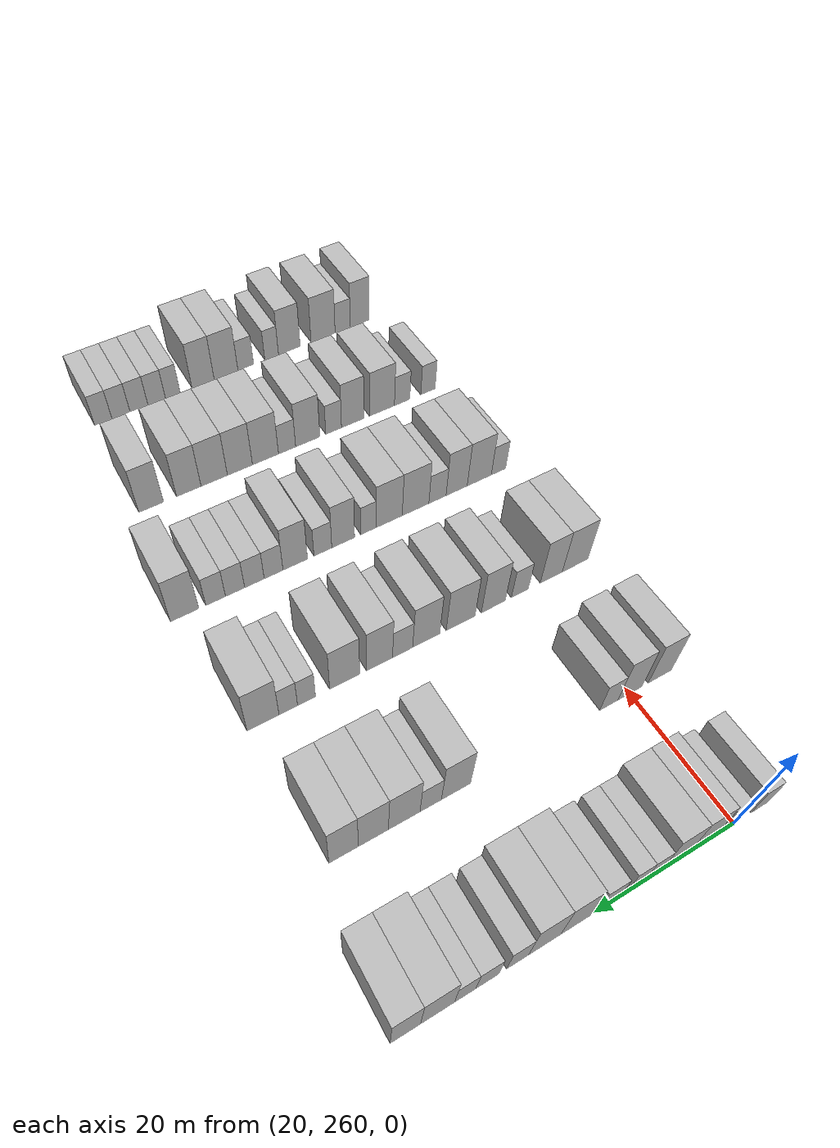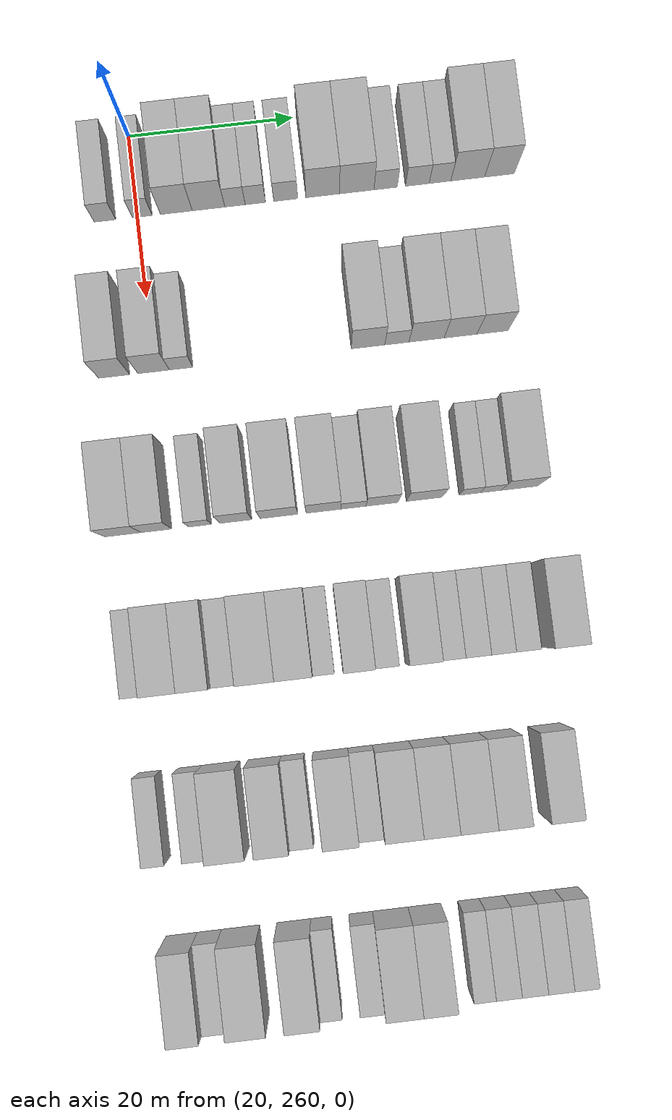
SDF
<sdf version="1.6">
 <world name="default">
  <model name="building_148">
   <static>1</static>
   <pose>25.0000 256.0724 0 0.000000 0.000000 0.000000</pose>
   <link name="link">
    <pose>0 0 3.00 0 0 0</pose>
    <collision name="collision"><geometry><box><size>10.0000 2.6097 6.0000</size></box></geometry></collision>
    <visual name="visual">
     <cast_shadows>0</cast_shadows>
     <geometry><box><size>10.0000 2.6097 6.0000</size></box></geometry>
     <material>
      <script>
       <uri>model://HANNAS_wall/materials/scripts</uri>
       <uri>model://HANNAS_wall/materials/textures</uri>
       <name>vrc/HANNAS_wall</name>
      </script>
     </material>
    </visual>
   </link>
  </model>
  <model name="building_149">
   <static>1</static>
   <pose>25.0000 260.5832 0 0.000000 0.000000 0.000000</pose>
   <link name="link">
    <pose>0 0 3.00 0 0 0</pose>
    <collision name="collision"><geometry><box><size>10.0000 2.4118 6.0000</size></box></geometry></collision>
    <visual name="visual">
     <cast_shadows>0</cast_shadows>
     <geometry><box><size>10.0000 2.4118 6.0000</size></box></geometry>
     <material>
      <script>
       <uri>model://HANNAS_wall/materials/scripts</uri>
       <uri>model://HANNAS_wall/materials/textures</uri>
       <name>vrc/HANNAS_wall</name>
      </script>
     </material>
    </visual>
   </link>
  </model>
  <model name="building_150">
   <static>1</static>
   <pose>25.0000 264.7228 0 0.000000 0.000000 0.000000</pose>
   <link name="link">
    <pose>0 0 4.50 0 0 0</pose>
    <collision name="collision"><geometry><box><size>10.0000 3.8675 9.0000</size></box></geometry></collision>
    <visual name="visual">
     <cast_shadows>0</cast_shadows>
     <geometry><box><size>10.0000 3.8675 9.0000</size></box></geometry>
     <material>
      <script>
       <uri>model://HANNAS_wall/materials/scripts</uri>
       <uri>model://HANNAS_wall/materials/textures</uri>
       <name>vrc/HANNAS_wall</name>
      </script>
     </material>
    </visual>
   </link>
  </model>
  <model name="building_151">
   <static>1</static>
   <pose>25.0000 268.6238 0 0.000000 0.000000 0.000000</pose>
   <link name="link">
    <pose>0 0 4.50 0 0 0</pose>
    <collision name="collision"><geometry><box><size>10.0000 3.9345 9.0000</size></box></geometry></collision>
    <visual name="visual">
     <cast_shadows>0</cast_shadows>
     <geometry><box><size>10.0000 3.9345 9.0000</size></box></geometry>
     <material>
      <script>
       <uri>model://HANNAS_wall/materials/scripts</uri>
       <uri>model://HANNAS_wall/materials/textures</uri>
       <name>vrc/HANNAS_wall</name>
      </script>
     </material>
    </visual>
   </link>
  </model>
  <model name="building_152">
   <static>1</static>
   <pose>25.0000 271.8308 0 0.000000 0.000000 0.000000</pose>
   <link name="link">
    <pose>0 0 3.00 0 0 0</pose>
    <collision name="collision"><geometry><box><size>10.0000 2.4795 6.0000</size></box></geometry></collision>
    <visual name="visual">
     <cast_shadows>0</cast_shadows>
     <geometry><box><size>10.0000 2.4795 6.0000</size></box></geometry>
     <material>
      <script>
       <uri>model://HANNAS_wall/materials/scripts</uri>
       <uri>model://HANNAS_wall/materials/textures</uri>
       <name>vrc/HANNAS_wall</name>
      </script>
     </material>
    </visual>
   </link>
  </model>
  <model name="building_153">
   <static>1</static>
   <pose>25.0000 274.3055 0 0.000000 0.000000 0.000000</pose>
   <link name="link">
    <pose>0 0 3.00 0 0 0</pose>
    <collision name="collision"><geometry><box><size>10.0000 2.4700 6.0000</size></box></geometry></collision>
    <visual name="visual">
     <cast_shadows>0</cast_shadows>
     <geometry><box><size>10.0000 2.4700 6.0000</size></box></geometry>
     <material>
      <script>
       <uri>model://HANNAS_wall/materials/scripts</uri>
       <uri>model://HANNAS_wall/materials/textures</uri>
       <name>vrc/HANNAS_wall</name>
      </script>
     </material>
    </visual>
   </link>
  </model>
  <model name="building_154">
   <static>1</static>
   <pose>25.0000 277.9898 0 0.000000 0.000000 0.000000</pose>
   <link name="link">
    <pose>0 0 3.00 0 0 0</pose>
    <collision name="collision"><geometry><box><size>10.0000 2.8985 6.0000</size></box></geometry></collision>
    <visual name="visual">
     <cast_shadows>0</cast_shadows>
     <geometry><box><size>10.0000 2.8985 6.0000</size></box></geometry>
     <material>
      <script>
       <uri>model://HANNAS_wall/materials/scripts</uri>
       <uri>model://HANNAS_wall/materials/textures</uri>
       <name>vrc/HANNAS_wall</name>
      </script>
     </material>
    </visual>
   </link>
  </model>
  <model name="building_155">
   <static>1</static>
   <pose>25.0000 282.4814 0 0.000000 0.000000 0.000000</pose>
   <link name="link">
    <pose>0 0 4.50 0 0 0</pose>
    <collision name="collision"><geometry><box><size>10.0000 4.0847 9.0000</size></box></geometry></collision>
    <visual name="visual">
     <cast_shadows>0</cast_shadows>
     <geometry><box><size>10.0000 4.0847 9.0000</size></box></geometry>
     <material>
      <script>
       <uri>model://HANNAS_wall/materials/scripts</uri>
       <uri>model://HANNAS_wall/materials/textures</uri>
       <name>vrc/HANNAS_wall</name>
      </script>
     </material>
    </visual>
   </link>
  </model>
  <model name="building_156">
   <static>1</static>
   <pose>25.0000 286.6194 0 0.000000 0.000000 0.000000</pose>
   <link name="link">
    <pose>0 0 4.50 0 0 0</pose>
    <collision name="collision"><geometry><box><size>10.0000 4.1914 9.0000</size></box></geometry></collision>
    <visual name="visual">
     <cast_shadows>0</cast_shadows>
     <geometry><box><size>10.0000 4.1914 9.0000</size></box></geometry>
     <material>
      <script>
       <uri>model://HANNAS_wall/materials/scripts</uri>
       <uri>model://HANNAS_wall/materials/textures</uri>
       <name>vrc/HANNAS_wall</name>
      </script>
     </material>
    </visual>
   </link>
  </model>
  <model name="building_157">
   <static>1</static>
   <pose>25.0000 290.1239 0 0.000000 0.000000 0.000000</pose>
   <link name="link">
    <pose>0 0 3.00 0 0 0</pose>
    <collision name="collision"><geometry><box><size>10.0000 2.8177 6.0000</size></box></geometry></collision>
    <visual name="visual">
     <cast_shadows>0</cast_shadows>
     <geometry><box><size>10.0000 2.8177 6.0000</size></box></geometry>
     <material>
      <script>
       <uri>model://HANNAS_wall/materials/scripts</uri>
       <uri>model://HANNAS_wall/materials/textures</uri>
       <name>vrc/HANNAS_wall</name>
      </script>
     </material>
    </visual>
   </link>
  </model>
  <model name="building_158">
   <static>1</static>
   <pose>25.0000 293.9737 0 0.000000 0.000000 0.000000</pose>
   <link name="link">
    <pose>0 0 3.00 0 0 0</pose>
    <collision name="collision"><geometry><box><size>10.0000 2.8818 6.0000</size></box></geometry></collision>
    <visual name="visual">
     <cast_shadows>0</cast_shadows>
     <geometry><box><size>10.0000 2.8818 6.0000</size></box></geometry>
     <material>
      <script>
       <uri>model://HANNAS_wall/materials/scripts</uri>
       <uri>model://HANNAS_wall/materials/textures</uri>
       <name>vrc/HANNAS_wall</name>
      </script>
     </material>
    </visual>
   </link>
  </model>
  <model name="building_159">
   <static>1</static>
   <pose>25.0000 296.7320 0 0.000000 0.000000 0.000000</pose>
   <link name="link">
    <pose>0 0 3.00 0 0 0</pose>
    <collision name="collision"><geometry><box><size>10.0000 2.6347 6.0000</size></box></geometry></collision>
    <visual name="visual">
     <cast_shadows>0</cast_shadows>
     <geometry><box><size>10.0000 2.6347 6.0000</size></box></geometry>
     <material>
      <script>
       <uri>model://HANNAS_wall/materials/scripts</uri>
       <uri>model://HANNAS_wall/materials/textures</uri>
       <name>vrc/HANNAS_wall</name>
      </script>
     </material>
    </visual>
   </link>
  </model>
  <model name="building_160">
   <static>1</static>
   <pose>25.0000 300.1046 0 0.000000 0.000000 0.000000</pose>
   <link name="link">
    <pose>0 0 4.50 0 0 0</pose>
    <collision name="collision"><geometry><box><size>10.0000 4.1106 9.0000</size></box></geometry></collision>
    <visual name="visual">
     <cast_shadows>0</cast_shadows>
     <geometry><box><size>10.0000 4.1106 9.0000</size></box></geometry>
     <material>
      <script>
       <uri>model://HANNAS_wall/materials/scripts</uri>
       <uri>model://HANNAS_wall/materials/textures</uri>
       <name>vrc/HANNAS_wall</name>
      </script>
     </material>
    </visual>
   </link>
  </model>
  <model name="building_161">
   <static>1</static>
   <pose>25.0000 303.9620 0 0.000000 0.000000 0.000000</pose>
   <link name="link">
    <pose>0 0 4.50 0 0 0</pose>
    <collision name="collision"><geometry><box><size>10.0000 3.6041 9.0000</size></box></geometry></collision>
    <visual name="visual">
     <cast_shadows>0</cast_shadows>
     <geometry><box><size>10.0000 3.6041 9.0000</size></box></geometry>
     <material>
      <script>
       <uri>model://HANNAS_wall/materials/scripts</uri>
       <uri>model://HANNAS_wall/materials/textures</uri>
       <name>vrc/HANNAS_wall</name>
      </script>
     </material>
    </visual>
   </link>
  </model>
  <model name="building_323">
   <static>1</static>
   <pose>44.0000 255.1753 0 0.000000 0.000000 0.000000</pose>
   <link name="link">
    <pose>0 0 4.50 0 0 0</pose>
    <collision name="collision"><geometry><box><size>10.0000 3.7163 9.0000</size></box></geometry></collision>
    <visual name="visual">
     <cast_shadows>0</cast_shadows>
     <geometry><box><size>10.0000 3.7163 9.0000</size></box></geometry>
     <material>
      <script>
       <uri>model://HANNAS_wall/materials/scripts</uri>
       <uri>model://HANNAS_wall/materials/textures</uri>
       <name>vrc/HANNAS_wall</name>
      </script>
     </material>
    </visual>
   </link>
  </model>
  <model name="building_324">
   <static>1</static>
   <pose>44.0000 259.9246 0 0.000000 0.000000 0.000000</pose>
   <link name="link">
    <pose>0 0 4.50 0 0 0</pose>
    <collision name="collision"><geometry><box><size>10.0000 3.7822 9.0000</size></box></geometry></collision>
    <visual name="visual">
     <cast_shadows>0</cast_shadows>
     <geometry><box><size>10.0000 3.7822 9.0000</size></box></geometry>
     <material>
      <script>
       <uri>model://HANNAS_wall/materials/scripts</uri>
       <uri>model://HANNAS_wall/materials/textures</uri>
       <name>vrc/HANNAS_wall</name>
      </script>
     </material>
    </visual>
   </link>
  </model>
  <model name="building_325">
   <static>1</static>
   <pose>44.0000 263.2282 0 0.000000 0.000000 0.000000</pose>
   <link name="link">
    <pose>0 0 3.00 0 0 0</pose>
    <collision name="collision"><geometry><box><size>10.0000 2.8252 6.0000</size></box></geometry></collision>
    <visual name="visual">
     <cast_shadows>0</cast_shadows>
     <geometry><box><size>10.0000 2.8252 6.0000</size></box></geometry>
     <material>
      <script>
       <uri>model://HANNAS_wall/materials/scripts</uri>
       <uri>model://HANNAS_wall/materials/textures</uri>
       <name>vrc/HANNAS_wall</name>
      </script>
     </material>
    </visual>
   </link>
  </model>
  <model name="building_326">
   <static>1</static>
   <pose>44.0000 285.7005 0 0.000000 0.000000 0.000000</pose>
   <link name="link">
    <pose>0 0 4.50 0 0 0</pose>
    <collision name="collision"><geometry><box><size>10.0000 4.0398 9.0000</size></box></geometry></collision>
    <visual name="visual">
     <cast_shadows>0</cast_shadows>
     <geometry><box><size>10.0000 4.0398 9.0000</size></box></geometry>
     <material>
      <script>
       <uri>model://HANNAS_wall/materials/scripts</uri>
       <uri>model://HANNAS_wall/materials/textures</uri>
       <name>vrc/HANNAS_wall</name>
      </script>
     </material>
    </visual>
   </link>
  </model>
  <model name="building_327">
   <static>1</static>
   <pose>44.0000 289.1769 0 0.000000 0.000000 0.000000</pose>
   <link name="link">
    <pose>0 0 3.00 0 0 0</pose>
    <collision name="collision"><geometry><box><size>10.0000 2.9129 6.0000</size></box></geometry></collision>
    <visual name="visual">
     <cast_shadows>0</cast_shadows>
     <geometry><box><size>10.0000 2.9129 6.0000</size></box></geometry>
     <material>
      <script>
       <uri>model://HANNAS_wall/materials/scripts</uri>
       <uri>model://HANNAS_wall/materials/textures</uri>
       <name>vrc/HANNAS_wall</name>
      </script>
     </material>
    </visual>
   </link>
  </model>
  <model name="building_328">
   <static>1</static>
   <pose>44.0000 292.7556 0 0.000000 0.000000 0.000000</pose>
   <link name="link">
    <pose>0 0 4.50 0 0 0</pose>
    <collision name="collision"><geometry><box><size>10.0000 4.2446 9.0000</size></box></geometry></collision>
    <visual name="visual">
     <cast_shadows>0</cast_shadows>
     <geometry><box><size>10.0000 4.2446 9.0000</size></box></geometry>
     <material>
      <script>
       <uri>model://HANNAS_wall/materials/scripts</uri>
       <uri>model://HANNAS_wall/materials/textures</uri>
       <name>vrc/HANNAS_wall</name>
      </script>
     </material>
    </visual>
   </link>
  </model>
  <model name="building_329">
   <static>1</static>
   <pose>44.0000 296.8523 0 0.000000 0.000000 0.000000</pose>
   <link name="link">
    <pose>0 0 4.50 0 0 0</pose>
    <collision name="collision"><geometry><box><size>10.0000 3.9488 9.0000</size></box></geometry></collision>
    <visual name="visual">
     <cast_shadows>0</cast_shadows>
     <geometry><box><size>10.0000 3.9488 9.0000</size></box></geometry>
     <material>
      <script>
       <uri>model://HANNAS_wall/materials/scripts</uri>
       <uri>model://HANNAS_wall/materials/textures</uri>
       <name>vrc/HANNAS_wall</name>
      </script>
     </material>
    </visual>
   </link>
  </model>
  <model name="building_330">
   <static>1</static>
   <pose>44.0000 300.7089 0 0.000000 0.000000 0.000000</pose>
   <link name="link">
    <pose>0 0 4.50 0 0 0</pose>
    <collision name="collision"><geometry><box><size>10.0000 3.7645 9.0000</size></box></geometry></collision>
    <visual name="visual">
     <cast_shadows>0</cast_shadows>
     <geometry><box><size>10.0000 3.7645 9.0000</size></box></geometry>
     <material>
      <script>
       <uri>model://HANNAS_wall/materials/scripts</uri>
       <uri>model://HANNAS_wall/materials/textures</uri>
       <name>vrc/HANNAS_wall</name>
      </script>
     </material>
    </visual>
   </link>
  </model>
  <model name="building_487">
   <static>1</static>
   <pose>63.0000 254.2219 0 0.000000 0.000000 0.000000</pose>
   <link name="link">
    <pose>0 0 4.50 0 0 0</pose>
    <collision name="collision"><geometry><box><size>10.0000 4.3231 9.0000</size></box></geometry></collision>
    <visual name="visual">
     <cast_shadows>0</cast_shadows>
     <geometry><box><size>10.0000 4.3231 9.0000</size></box></geometry>
     <material>
      <script>
       <uri>model://HANNAS_wall/materials/scripts</uri>
       <uri>model://HANNAS_wall/materials/textures</uri>
       <name>vrc/HANNAS_wall</name>
      </script>
     </material>
    </visual>
   </link>
  </model>
  <model name="building_488">
   <static>1</static>
   <pose>63.0000 258.2135 0 0.000000 0.000000 0.000000</pose>
   <link name="link">
    <pose>0 0 4.50 0 0 0</pose>
    <collision name="collision"><geometry><box><size>10.0000 3.6602 9.0000</size></box></geometry></collision>
    <visual name="visual">
     <cast_shadows>0</cast_shadows>
     <geometry><box><size>10.0000 3.6602 9.0000</size></box></geometry>
     <material>
      <script>
       <uri>model://HANNAS_wall/materials/scripts</uri>
       <uri>model://HANNAS_wall/materials/textures</uri>
       <name>vrc/HANNAS_wall</name>
      </script>
     </material>
    </visual>
   </link>
  </model>
  <model name="building_489">
   <static>1</static>
   <pose>63.0000 263.4061 0 0.000000 0.000000 0.000000</pose>
   <link name="link">
    <pose>0 0 3.00 0 0 0</pose>
    <collision name="collision"><geometry><box><size>10.0000 2.7249 6.0000</size></box></geometry></collision>
    <visual name="visual">
     <cast_shadows>0</cast_shadows>
     <geometry><box><size>10.0000 2.7249 6.0000</size></box></geometry>
     <material>
      <script>
       <uri>model://HANNAS_wall/materials/scripts</uri>
       <uri>model://HANNAS_wall/materials/textures</uri>
       <name>vrc/HANNAS_wall</name>
      </script>
     </material>
    </visual>
   </link>
  </model>
  <model name="building_490">
   <static>1</static>
   <pose>63.0000 267.6697 0 0.000000 0.000000 0.000000</pose>
   <link name="link">
    <pose>0 0 4.50 0 0 0</pose>
    <collision name="collision"><geometry><box><size>10.0000 3.8024 9.0000</size></box></geometry></collision>
    <visual name="visual">
     <cast_shadows>0</cast_shadows>
     <geometry><box><size>10.0000 3.8024 9.0000</size></box></geometry>
     <material>
      <script>
       <uri>model://HANNAS_wall/materials/scripts</uri>
       <uri>model://HANNAS_wall/materials/textures</uri>
       <name>vrc/HANNAS_wall</name>
      </script>
     </material>
    </visual>
   </link>
  </model>
  <model name="building_491">
   <static>1</static>
   <pose>63.0000 272.8130 0 0.000000 0.000000 0.000000</pose>
   <link name="link">
    <pose>0 0 4.50 0 0 0</pose>
    <collision name="collision"><geometry><box><size>10.0000 4.4840 9.0000</size></box></geometry></collision>
    <visual name="visual">
     <cast_shadows>0</cast_shadows>
     <geometry><box><size>10.0000 4.4840 9.0000</size></box></geometry>
     <material>
      <script>
       <uri>model://HANNAS_wall/materials/scripts</uri>
       <uri>model://HANNAS_wall/materials/textures</uri>
       <name>vrc/HANNAS_wall</name>
      </script>
     </material>
    </visual>
   </link>
  </model>
  <model name="building_492">
   <static>1</static>
   <pose>63.0000 278.1121 0 0.000000 0.000000 0.000000</pose>
   <link name="link">
    <pose>0 0 4.50 0 0 0</pose>
    <collision name="collision"><geometry><box><size>10.0000 4.1141 9.0000</size></box></geometry></collision>
    <visual name="visual">
     <cast_shadows>0</cast_shadows>
     <geometry><box><size>10.0000 4.1141 9.0000</size></box></geometry>
     <material>
      <script>
       <uri>model://HANNAS_wall/materials/scripts</uri>
       <uri>model://HANNAS_wall/materials/textures</uri>
       <name>vrc/HANNAS_wall</name>
      </script>
     </material>
    </visual>
   </link>
  </model>
  <model name="building_493">
   <static>1</static>
   <pose>63.0000 281.6688 0 0.000000 0.000000 0.000000</pose>
   <link name="link">
    <pose>0 0 3.00 0 0 0</pose>
    <collision name="collision"><geometry><box><size>10.0000 2.9994 6.0000</size></box></geometry></collision>
    <visual name="visual">
     <cast_shadows>0</cast_shadows>
     <geometry><box><size>10.0000 2.9994 6.0000</size></box></geometry>
     <material>
      <script>
       <uri>model://HANNAS_wall/materials/scripts</uri>
       <uri>model://HANNAS_wall/materials/textures</uri>
       <name>vrc/HANNAS_wall</name>
      </script>
     </material>
    </visual>
   </link>
  </model>
  <model name="building_494">
   <static>1</static>
   <pose>63.0000 285.0829 0 0.000000 0.000000 0.000000</pose>
   <link name="link">
    <pose>0 0 4.50 0 0 0</pose>
    <collision name="collision"><geometry><box><size>10.0000 3.8289 9.0000</size></box></geometry></collision>
    <visual name="visual">
     <cast_shadows>0</cast_shadows>
     <geometry><box><size>10.0000 3.8289 9.0000</size></box></geometry>
     <material>
      <script>
       <uri>model://HANNAS_wall/materials/scripts</uri>
       <uri>model://HANNAS_wall/materials/textures</uri>
       <name>vrc/HANNAS_wall</name>
      </script>
     </material>
    </visual>
   </link>
  </model>
  <model name="building_495">
   <static>1</static>
   <pose>63.0000 290.1448 0 0.000000 0.000000 0.000000</pose>
   <link name="link">
    <pose>0 0 4.50 0 0 0</pose>
    <collision name="collision"><geometry><box><size>10.0000 4.2949 9.0000</size></box></geometry></collision>
    <visual name="visual">
     <cast_shadows>0</cast_shadows>
     <geometry><box><size>10.0000 4.2949 9.0000</size></box></geometry>
     <material>
      <script>
       <uri>model://HANNAS_wall/materials/scripts</uri>
       <uri>model://HANNAS_wall/materials/textures</uri>
       <name>vrc/HANNAS_wall</name>
      </script>
     </material>
    </visual>
   </link>
  </model>
  <model name="building_496">
   <static>1</static>
   <pose>63.0000 295.5424 0 0.000000 0.000000 0.000000</pose>
   <link name="link">
    <pose>0 0 3.00 0 0 0</pose>
    <collision name="collision"><geometry><box><size>10.0000 2.5002 6.0000</size></box></geometry></collision>
    <visual name="visual">
     <cast_shadows>0</cast_shadows>
     <geometry><box><size>10.0000 2.5002 6.0000</size></box></geometry>
     <material>
      <script>
       <uri>model://HANNAS_wall/materials/scripts</uri>
       <uri>model://HANNAS_wall/materials/textures</uri>
       <name>vrc/HANNAS_wall</name>
      </script>
     </material>
    </visual>
   </link>
  </model>
  <model name="building_497">
   <static>1</static>
   <pose>63.0000 298.0688 0 0.000000 0.000000 0.000000</pose>
   <link name="link">
    <pose>0 0 3.00 0 0 0</pose>
    <collision name="collision"><geometry><box><size>10.0000 2.5527 6.0000</size></box></geometry></collision>
    <visual name="visual">
     <cast_shadows>0</cast_shadows>
     <geometry><box><size>10.0000 2.5527 6.0000</size></box></geometry>
     <material>
      <script>
       <uri>model://HANNAS_wall/materials/scripts</uri>
       <uri>model://HANNAS_wall/materials/textures</uri>
       <name>vrc/HANNAS_wall</name>
      </script>
     </material>
    </visual>
   </link>
  </model>
  <model name="building_498">
   <static>1</static>
   <pose>63.0000 301.5278 0 0.000000 0.000000 0.000000</pose>
   <link name="link">
    <pose>0 0 4.50 0 0 0</pose>
    <collision name="collision"><geometry><box><size>10.0000 4.3652 9.0000</size></box></geometry></collision>
    <visual name="visual">
     <cast_shadows>0</cast_shadows>
     <geometry><box><size>10.0000 4.3652 9.0000</size></box></geometry>
     <material>
      <script>
       <uri>model://HANNAS_wall/materials/scripts</uri>
       <uri>model://HANNAS_wall/materials/textures</uri>
       <name>vrc/HANNAS_wall</name>
      </script>
     </material>
    </visual>
   </link>
  </model>
  <model name="building_654">
   <static>1</static>
   <pose>82.0000 253.9938 0 0.000000 0.000000 0.000000</pose>
   <link name="link">
    <pose>0 0 3.00 0 0 0</pose>
    <collision name="collision"><geometry><box><size>10.0000 2.5223 6.0000</size></box></geometry></collision>
    <visual name="visual">
     <cast_shadows>0</cast_shadows>
     <geometry><box><size>10.0000 2.5223 6.0000</size></box></geometry>
     <material>
      <script>
       <uri>model://HANNAS_wall/materials/scripts</uri>
       <uri>model://HANNAS_wall/materials/textures</uri>
       <name>vrc/HANNAS_wall</name>
      </script>
     </material>
    </visual>
   </link>
  </model>
  <model name="building_655">
   <static>1</static>
   <pose>82.0000 257.3512 0 0.000000 0.000000 0.000000</pose>
   <link name="link">
    <pose>0 0 4.50 0 0 0</pose>
    <collision name="collision"><geometry><box><size>10.0000 4.1924 9.0000</size></box></geometry></collision>
    <visual name="visual">
     <cast_shadows>0</cast_shadows>
     <geometry><box><size>10.0000 4.1924 9.0000</size></box></geometry>
     <material>
      <script>
       <uri>model://HANNAS_wall/materials/scripts</uri>
       <uri>model://HANNAS_wall/materials/textures</uri>
       <name>vrc/HANNAS_wall</name>
      </script>
     </material>
    </visual>
   </link>
  </model>
  <model name="building_656">
   <static>1</static>
   <pose>82.0000 261.2569 0 0.000000 0.000000 0.000000</pose>
   <link name="link">
    <pose>0 0 4.50 0 0 0</pose>
    <collision name="collision"><geometry><box><size>10.0000 3.6191 9.0000</size></box></geometry></collision>
    <visual name="visual">
     <cast_shadows>0</cast_shadows>
     <geometry><box><size>10.0000 3.6191 9.0000</size></box></geometry>
     <material>
      <script>
       <uri>model://HANNAS_wall/materials/scripts</uri>
       <uri>model://HANNAS_wall/materials/textures</uri>
       <name>vrc/HANNAS_wall</name>
      </script>
     </material>
    </visual>
   </link>
  </model>
  <model name="building_657">
   <static>1</static>
   <pose>82.0000 264.5228 0 0.000000 0.000000 0.000000</pose>
   <link name="link">
    <pose>0 0 3.00 0 0 0</pose>
    <collision name="collision"><geometry><box><size>10.0000 2.9127 6.0000</size></box></geometry></collision>
    <visual name="visual">
     <cast_shadows>0</cast_shadows>
     <geometry><box><size>10.0000 2.9127 6.0000</size></box></geometry>
     <material>
      <script>
       <uri>model://HANNAS_wall/materials/scripts</uri>
       <uri>model://HANNAS_wall/materials/textures</uri>
       <name>vrc/HANNAS_wall</name>
      </script>
     </material>
    </visual>
   </link>
  </model>
  <model name="building_658">
   <static>1</static>
   <pose>82.0000 268.1967 0 0.000000 0.000000 0.000000</pose>
   <link name="link">
    <pose>0 0 4.50 0 0 0</pose>
    <collision name="collision"><geometry><box><size>10.0000 4.4351 9.0000</size></box></geometry></collision>
    <visual name="visual">
     <cast_shadows>0</cast_shadows>
     <geometry><box><size>10.0000 4.4351 9.0000</size></box></geometry>
     <material>
      <script>
       <uri>model://HANNAS_wall/materials/scripts</uri>
       <uri>model://HANNAS_wall/materials/textures</uri>
       <name>vrc/HANNAS_wall</name>
      </script>
     </material>
    </visual>
   </link>
  </model>
  <model name="building_659">
   <static>1</static>
   <pose>82.0000 272.5528 0 0.000000 0.000000 0.000000</pose>
   <link name="link">
    <pose>0 0 4.50 0 0 0</pose>
    <collision name="collision"><geometry><box><size>10.0000 4.2771 9.0000</size></box></geometry></collision>
    <visual name="visual">
     <cast_shadows>0</cast_shadows>
     <geometry><box><size>10.0000 4.2771 9.0000</size></box></geometry>
     <material>
      <script>
       <uri>model://HANNAS_wall/materials/scripts</uri>
       <uri>model://HANNAS_wall/materials/textures</uri>
       <name>vrc/HANNAS_wall</name>
      </script>
     </material>
    </visual>
   </link>
  </model>
  <model name="building_660">
   <static>1</static>
   <pose>82.0000 275.9240 0 0.000000 0.000000 0.000000</pose>
   <link name="link">
    <pose>0 0 3.00 0 0 0</pose>
    <collision name="collision"><geometry><box><size>10.0000 2.4653 6.0000</size></box></geometry></collision>
    <visual name="visual">
     <cast_shadows>0</cast_shadows>
     <geometry><box><size>10.0000 2.4653 6.0000</size></box></geometry>
     <material>
      <script>
       <uri>model://HANNAS_wall/materials/scripts</uri>
       <uri>model://HANNAS_wall/materials/textures</uri>
       <name>vrc/HANNAS_wall</name>
      </script>
     </material>
    </visual>
   </link>
  </model>
  <model name="building_661">
   <static>1</static>
   <pose>82.0000 279.9573 0 0.000000 0.000000 0.000000</pose>
   <link name="link">
    <pose>0 0 4.50 0 0 0</pose>
    <collision name="collision"><geometry><box><size>10.0000 3.6013 9.0000</size></box></geometry></collision>
    <visual name="visual">
     <cast_shadows>0</cast_shadows>
     <geometry><box><size>10.0000 3.6013 9.0000</size></box></geometry>
     <material>
      <script>
       <uri>model://HANNAS_wall/materials/scripts</uri>
       <uri>model://HANNAS_wall/materials/textures</uri>
       <name>vrc/HANNAS_wall</name>
      </script>
     </material>
    </visual>
   </link>
  </model>
  <model name="building_662">
   <static>1</static>
   <pose>82.0000 283.1528 0 0.000000 0.000000 0.000000</pose>
   <link name="link">
    <pose>0 0 3.00 0 0 0</pose>
    <collision name="collision"><geometry><box><size>10.0000 2.7896 6.0000</size></box></geometry></collision>
    <visual name="visual">
     <cast_shadows>0</cast_shadows>
     <geometry><box><size>10.0000 2.7896 6.0000</size></box></geometry>
     <material>
      <script>
       <uri>model://HANNAS_wall/materials/scripts</uri>
       <uri>model://HANNAS_wall/materials/textures</uri>
       <name>vrc/HANNAS_wall</name>
      </script>
     </material>
    </visual>
   </link>
  </model>
  <model name="building_663">
   <static>1</static>
   <pose>82.0000 287.4213 0 0.000000 0.000000 0.000000</pose>
   <link name="link">
    <pose>0 0 4.50 0 0 0</pose>
    <collision name="collision"><geometry><box><size>10.0000 3.7474 9.0000</size></box></geometry></collision>
    <visual name="visual">
     <cast_shadows>0</cast_shadows>
     <geometry><box><size>10.0000 3.7474 9.0000</size></box></geometry>
     <material>
      <script>
       <uri>model://HANNAS_wall/materials/scripts</uri>
       <uri>model://HANNAS_wall/materials/textures</uri>
       <name>vrc/HANNAS_wall</name>
      </script>
     </material>
    </visual>
   </link>
  </model>
  <model name="building_664">
   <static>1</static>
   <pose>82.0000 290.7126 0 0.000000 0.000000 0.000000</pose>
   <link name="link">
    <pose>0 0 3.00 0 0 0</pose>
    <collision name="collision"><geometry><box><size>10.0000 2.8353 6.0000</size></box></geometry></collision>
    <visual name="visual">
     <cast_shadows>0</cast_shadows>
     <geometry><box><size>10.0000 2.8353 6.0000</size></box></geometry>
     <material>
      <script>
       <uri>model://HANNAS_wall/materials/scripts</uri>
       <uri>model://HANNAS_wall/materials/textures</uri>
       <name>vrc/HANNAS_wall</name>
      </script>
     </material>
    </visual>
   </link>
  </model>
  <model name="building_665">
   <static>1</static>
   <pose>82.0000 293.5919 0 0.000000 0.000000 0.000000</pose>
   <link name="link">
    <pose>0 0 3.00 0 0 0</pose>
    <collision name="collision"><geometry><box><size>10.0000 2.9231 6.0000</size></box></geometry></collision>
    <visual name="visual">
     <cast_shadows>0</cast_shadows>
     <geometry><box><size>10.0000 2.9231 6.0000</size></box></geometry>
     <material>
      <script>
       <uri>model://HANNAS_wall/materials/scripts</uri>
       <uri>model://HANNAS_wall/materials/textures</uri>
       <name>vrc/HANNAS_wall</name>
      </script>
     </material>
    </visual>
   </link>
  </model>
  <model name="building_666">
   <static>1</static>
   <pose>82.0000 296.4645 0 0.000000 0.000000 0.000000</pose>
   <link name="link">
    <pose>0 0 3.00 0 0 0</pose>
    <collision name="collision"><geometry><box><size>10.0000 2.8221 6.0000</size></box></geometry></collision>
    <visual name="visual">
     <cast_shadows>0</cast_shadows>
     <geometry><box><size>10.0000 2.8221 6.0000</size></box></geometry>
     <material>
      <script>
       <uri>model://HANNAS_wall/materials/scripts</uri>
       <uri>model://HANNAS_wall/materials/textures</uri>
       <name>vrc/HANNAS_wall</name>
      </script>
     </material>
    </visual>
   </link>
  </model>
  <model name="building_667">
   <static>1</static>
   <pose>82.0000 299.3100 0 0.000000 0.000000 0.000000</pose>
   <link name="link">
    <pose>0 0 3.00 0 0 0</pose>
    <collision name="collision"><geometry><box><size>10.0000 2.8689 6.0000</size></box></geometry></collision>
    <visual name="visual">
     <cast_shadows>0</cast_shadows>
     <geometry><box><size>10.0000 2.8689 6.0000</size></box></geometry>
     <material>
      <script>
       <uri>model://HANNAS_wall/materials/scripts</uri>
       <uri>model://HANNAS_wall/materials/textures</uri>
       <name>vrc/HANNAS_wall</name>
      </script>
     </material>
    </visual>
   </link>
  </model>
  <model name="building_668">
   <static>1</static>
   <pose>82.0000 303.7716 0 0.000000 0.000000 0.000000</pose>
   <link name="link">
    <pose>0 0 4.50 0 0 0</pose>
    <collision name="collision"><geometry><box><size>10.0000 4.0543 9.0000</size></box></geometry></collision>
    <visual name="visual">
     <cast_shadows>0</cast_shadows>
     <geometry><box><size>10.0000 4.0543 9.0000</size></box></geometry>
     <material>
      <script>
       <uri>model://HANNAS_wall/materials/scripts</uri>
       <uri>model://HANNAS_wall/materials/textures</uri>
       <name>vrc/HANNAS_wall</name>
      </script>
     </material>
    </visual>
   </link>
  </model>
  <model name="building_840">
   <static>1</static>
   <pose>101.0000 254.4260 0 0.000000 0.000000 0.000000</pose>
   <link name="link">
    <pose>0 0 3.00 0 0 0</pose>
    <collision name="collision"><geometry><box><size>10.0000 2.6193 6.0000</size></box></geometry></collision>
    <visual name="visual">
     <cast_shadows>0</cast_shadows>
     <geometry><box><size>10.0000 2.6193 6.0000</size></box></geometry>
     <material>
      <script>
       <uri>model://HANNAS_wall/materials/scripts</uri>
       <uri>model://HANNAS_wall/materials/textures</uri>
       <name>vrc/HANNAS_wall</name>
      </script>
     </material>
    </visual>
   </link>
  </model>
  <model name="building_841">
   <static>1</static>
   <pose>101.0000 259.1254 0 0.000000 0.000000 0.000000</pose>
   <link name="link">
    <pose>0 0 3.00 0 0 0</pose>
    <collision name="collision"><geometry><box><size>10.0000 2.7795 6.0000</size></box></geometry></collision>
    <visual name="visual">
     <cast_shadows>0</cast_shadows>
     <geometry><box><size>10.0000 2.7795 6.0000</size></box></geometry>
     <material>
      <script>
       <uri>model://HANNAS_wall/materials/scripts</uri>
       <uri>model://HANNAS_wall/materials/textures</uri>
       <name>vrc/HANNAS_wall</name>
      </script>
     </material>
    </visual>
   </link>
  </model>
  <model name="building_842">
   <static>1</static>
   <pose>101.0000 262.7456 0 0.000000 0.000000 0.000000</pose>
   <link name="link">
    <pose>0 0 4.50 0 0 0</pose>
    <collision name="collision"><geometry><box><size>10.0000 4.4610 9.0000</size></box></geometry></collision>
    <visual name="visual">
     <cast_shadows>0</cast_shadows>
     <geometry><box><size>10.0000 4.4610 9.0000</size></box></geometry>
     <material>
      <script>
       <uri>model://HANNAS_wall/materials/scripts</uri>
       <uri>model://HANNAS_wall/materials/textures</uri>
       <name>vrc/HANNAS_wall</name>
      </script>
     </material>
    </visual>
   </link>
  </model>
  <model name="building_843">
   <static>1</static>
   <pose>101.0000 267.9151 0 0.000000 0.000000 0.000000</pose>
   <link name="link">
    <pose>0 0 4.50 0 0 0</pose>
    <collision name="collision"><geometry><box><size>10.0000 3.8781 9.0000</size></box></geometry></collision>
    <visual name="visual">
     <cast_shadows>0</cast_shadows>
     <geometry><box><size>10.0000 3.8781 9.0000</size></box></geometry>
     <material>
      <script>
       <uri>model://HANNAS_wall/materials/scripts</uri>
       <uri>model://HANNAS_wall/materials/textures</uri>
       <name>vrc/HANNAS_wall</name>
      </script>
     </material>
    </visual>
   </link>
  </model>
  <model name="building_844">
   <static>1</static>
   <pose>101.0000 271.2111 0 0.000000 0.000000 0.000000</pose>
   <link name="link">
    <pose>0 0 3.00 0 0 0</pose>
    <collision name="collision"><geometry><box><size>10.0000 2.7137 6.0000</size></box></geometry></collision>
    <visual name="visual">
     <cast_shadows>0</cast_shadows>
     <geometry><box><size>10.0000 2.7137 6.0000</size></box></geometry>
     <material>
      <script>
       <uri>model://HANNAS_wall/materials/scripts</uri>
       <uri>model://HANNAS_wall/materials/textures</uri>
       <name>vrc/HANNAS_wall</name>
      </script>
     </material>
    </visual>
   </link>
  </model>
  <model name="building_845">
   <static>1</static>
   <pose>101.0000 275.6151 0 0.000000 0.000000 0.000000</pose>
   <link name="link">
    <pose>0 0 4.50 0 0 0</pose>
    <collision name="collision"><geometry><box><size>10.0000 4.0943 9.0000</size></box></geometry></collision>
    <visual name="visual">
     <cast_shadows>0</cast_shadows>
     <geometry><box><size>10.0000 4.0943 9.0000</size></box></geometry>
     <material>
      <script>
       <uri>model://HANNAS_wall/materials/scripts</uri>
       <uri>model://HANNAS_wall/materials/textures</uri>
       <name>vrc/HANNAS_wall</name>
      </script>
     </material>
    </visual>
   </link>
  </model>
  <model name="building_846">
   <static>1</static>
   <pose>101.0000 279.0934 0 0.000000 0.000000 0.000000</pose>
   <link name="link">
    <pose>0 0 3.00 0 0 0</pose>
    <collision name="collision"><geometry><box><size>10.0000 2.8624 6.0000</size></box></geometry></collision>
    <visual name="visual">
     <cast_shadows>0</cast_shadows>
     <geometry><box><size>10.0000 2.8624 6.0000</size></box></geometry>
     <material>
      <script>
       <uri>model://HANNAS_wall/materials/scripts</uri>
       <uri>model://HANNAS_wall/materials/textures</uri>
       <name>vrc/HANNAS_wall</name>
      </script>
     </material>
    </visual>
   </link>
  </model>
  <model name="building_847">
   <static>1</static>
   <pose>101.0000 282.6650 0 0.000000 0.000000 0.000000</pose>
   <link name="link">
    <pose>0 0 4.50 0 0 0</pose>
    <collision name="collision"><geometry><box><size>10.0000 4.2808 9.0000</size></box></geometry></collision>
    <visual name="visual">
     <cast_shadows>0</cast_shadows>
     <geometry><box><size>10.0000 4.2808 9.0000</size></box></geometry>
     <material>
      <script>
       <uri>model://HANNAS_wall/materials/scripts</uri>
       <uri>model://HANNAS_wall/materials/textures</uri>
       <name>vrc/HANNAS_wall</name>
      </script>
     </material>
    </visual>
   </link>
  </model>
  <model name="building_848">
   <static>1</static>
   <pose>101.0000 286.8326 0 0.000000 0.000000 0.000000</pose>
   <link name="link">
    <pose>0 0 4.50 0 0 0</pose>
    <collision name="collision"><geometry><box><size>10.0000 4.0544 9.0000</size></box></geometry></collision>
    <visual name="visual">
     <cast_shadows>0</cast_shadows>
     <geometry><box><size>10.0000 4.0544 9.0000</size></box></geometry>
     <material>
      <script>
       <uri>model://HANNAS_wall/materials/scripts</uri>
       <uri>model://HANNAS_wall/materials/textures</uri>
       <name>vrc/HANNAS_wall</name>
      </script>
     </material>
    </visual>
   </link>
  </model>
  <model name="building_849">
   <static>1</static>
   <pose>101.0000 290.9575 0 0.000000 0.000000 0.000000</pose>
   <link name="link">
    <pose>0 0 4.50 0 0 0</pose>
    <collision name="collision"><geometry><box><size>10.0000 4.1954 9.0000</size></box></geometry></collision>
    <visual name="visual">
     <cast_shadows>0</cast_shadows>
     <geometry><box><size>10.0000 4.1954 9.0000</size></box></geometry>
     <material>
      <script>
       <uri>model://HANNAS_wall/materials/scripts</uri>
       <uri>model://HANNAS_wall/materials/textures</uri>
       <name>vrc/HANNAS_wall</name>
      </script>
     </material>
    </visual>
   </link>
  </model>
  <model name="building_850">
   <static>1</static>
   <pose>101.0000 294.9801 0 0.000000 0.000000 0.000000</pose>
   <link name="link">
    <pose>0 0 4.50 0 0 0</pose>
    <collision name="collision"><geometry><box><size>10.0000 3.8496 9.0000</size></box></geometry></collision>
    <visual name="visual">
     <cast_shadows>0</cast_shadows>
     <geometry><box><size>10.0000 3.8496 9.0000</size></box></geometry>
     <material>
      <script>
       <uri>model://HANNAS_wall/materials/scripts</uri>
       <uri>model://HANNAS_wall/materials/textures</uri>
       <name>vrc/HANNAS_wall</name>
      </script>
     </material>
    </visual>
   </link>
  </model>
  <model name="building_851">
   <static>1</static>
   <pose>101.0000 300.8011 0 0.000000 0.000000 0.000000</pose>
   <link name="link">
    <pose>0 0 4.50 0 0 0</pose>
    <collision name="collision"><geometry><box><size>10.0000 3.7924 9.0000</size></box></geometry></collision>
    <visual name="visual">
     <cast_shadows>0</cast_shadows>
     <geometry><box><size>10.0000 3.7924 9.0000</size></box></geometry>
     <material>
      <script>
       <uri>model://HANNAS_wall/materials/scripts</uri>
       <uri>model://HANNAS_wall/materials/textures</uri>
       <name>vrc/HANNAS_wall</name>
      </script>
     </material>
    </visual>
   </link>
  </model>
  <model name="building_1013">
   <static>1</static>
   <pose>120.0000 256.0333 0 0.000000 0.000000 0.000000</pose>
   <link name="link">
    <pose>0 0 4.50 0 0 0</pose>
    <collision name="collision"><geometry><box><size>10.0000 3.6171 9.0000</size></box></geometry></collision>
    <visual name="visual">
     <cast_shadows>0</cast_shadows>
     <geometry><box><size>10.0000 3.6171 9.0000</size></box></geometry>
     <material>
      <script>
       <uri>model://HANNAS_wall/materials/scripts</uri>
       <uri>model://HANNAS_wall/materials/textures</uri>
       <name>vrc/HANNAS_wall</name>
      </script>
     </material>
    </visual>
   </link>
  </model>
  <model name="building_1014">
   <static>1</static>
   <pose>120.0000 259.2613 0 0.000000 0.000000 0.000000</pose>
   <link name="link">
    <pose>0 0 3.00 0 0 0</pose>
    <collision name="collision"><geometry><box><size>10.0000 2.8389 6.0000</size></box></geometry></collision>
    <visual name="visual">
     <cast_shadows>0</cast_shadows>
     <geometry><box><size>10.0000 2.8389 6.0000</size></box></geometry>
     <material>
      <script>
       <uri>model://HANNAS_wall/materials/scripts</uri>
       <uri>model://HANNAS_wall/materials/textures</uri>
       <name>vrc/HANNAS_wall</name>
      </script>
     </material>
    </visual>
   </link>
  </model>
  <model name="building_1015">
   <static>1</static>
   <pose>120.0000 262.9157 0 0.000000 0.000000 0.000000</pose>
   <link name="link">
    <pose>0 0 4.50 0 0 0</pose>
    <collision name="collision"><geometry><box><size>10.0000 4.4700 9.0000</size></box></geometry></collision>
    <visual name="visual">
     <cast_shadows>0</cast_shadows>
     <geometry><box><size>10.0000 4.4700 9.0000</size></box></geometry>
     <material>
      <script>
       <uri>model://HANNAS_wall/materials/scripts</uri>
       <uri>model://HANNAS_wall/materials/textures</uri>
       <name>vrc/HANNAS_wall</name>
      </script>
     </material>
    </visual>
   </link>
  </model>
  <model name="building_1016">
   <static>1</static>
   <pose>120.0000 269.1180 0 0.000000 0.000000 0.000000</pose>
   <link name="link">
    <pose>0 0 4.50 0 0 0</pose>
    <collision name="collision"><geometry><box><size>10.0000 3.9345 9.0000</size></box></geometry></collision>
    <visual name="visual">
     <cast_shadows>0</cast_shadows>
     <geometry><box><size>10.0000 3.9345 9.0000</size></box></geometry>
     <material>
      <script>
       <uri>model://HANNAS_wall/materials/scripts</uri>
       <uri>model://HANNAS_wall/materials/textures</uri>
       <name>vrc/HANNAS_wall</name>
      </script>
     </material>
    </visual>
   </link>
  </model>
  <model name="building_1017">
   <static>1</static>
   <pose>120.0000 272.3153 0 0.000000 0.000000 0.000000</pose>
   <link name="link">
    <pose>0 0 3.00 0 0 0</pose>
    <collision name="collision"><geometry><box><size>10.0000 2.4602 6.0000</size></box></geometry></collision>
    <visual name="visual">
     <cast_shadows>0</cast_shadows>
     <geometry><box><size>10.0000 2.4602 6.0000</size></box></geometry>
     <material>
      <script>
       <uri>model://HANNAS_wall/materials/scripts</uri>
       <uri>model://HANNAS_wall/materials/textures</uri>
       <name>vrc/HANNAS_wall</name>
      </script>
     </material>
    </visual>
   </link>
  </model>
  <model name="building_1018">
   <static>1</static>
   <pose>120.0000 276.9244 0 0.000000 0.000000 0.000000</pose>
   <link name="link">
    <pose>0 0 3.00 0 0 0</pose>
    <collision name="collision"><geometry><box><size>10.0000 2.7580 6.0000</size></box></geometry></collision>
    <visual name="visual">
     <cast_shadows>0</cast_shadows>
     <geometry><box><size>10.0000 2.7580 6.0000</size></box></geometry>
     <material>
      <script>
       <uri>model://HANNAS_wall/materials/scripts</uri>
       <uri>model://HANNAS_wall/materials/textures</uri>
       <name>vrc/HANNAS_wall</name>
      </script>
     </material>
    </visual>
   </link>
  </model>
  <model name="building_1019">
   <static>1</static>
   <pose>120.0000 280.3741 0 0.000000 0.000000 0.000000</pose>
   <link name="link">
    <pose>0 0 4.50 0 0 0</pose>
    <collision name="collision"><geometry><box><size>10.0000 4.1414 9.0000</size></box></geometry></collision>
    <visual name="visual">
     <cast_shadows>0</cast_shadows>
     <geometry><box><size>10.0000 4.1414 9.0000</size></box></geometry>
     <material>
      <script>
       <uri>model://HANNAS_wall/materials/scripts</uri>
       <uri>model://HANNAS_wall/materials/textures</uri>
       <name>vrc/HANNAS_wall</name>
      </script>
     </material>
    </visual>
   </link>
  </model>
  <model name="building_1020">
   <static>1</static>
   <pose>120.0000 284.3507 0 0.000000 0.000000 0.000000</pose>
   <link name="link">
    <pose>0 0 4.50 0 0 0</pose>
    <collision name="collision"><geometry><box><size>10.0000 3.8117 9.0000</size></box></geometry></collision>
    <visual name="visual">
     <cast_shadows>0</cast_shadows>
     <geometry><box><size>10.0000 3.8117 9.0000</size></box></geometry>
     <material>
      <script>
       <uri>model://HANNAS_wall/materials/scripts</uri>
       <uri>model://HANNAS_wall/materials/textures</uri>
       <name>vrc/HANNAS_wall</name>
      </script>
     </material>
    </visual>
   </link>
  </model>
  <model name="building_1021">
   <static>1</static>
   <pose>120.0000 289.5035 0 0.000000 0.000000 0.000000</pose>
   <link name="link">
    <pose>0 0 3.00 0 0 0</pose>
    <collision name="collision"><geometry><box><size>10.0000 2.4940 6.0000</size></box></geometry></collision>
    <visual name="visual">
     <cast_shadows>0</cast_shadows>
     <geometry><box><size>10.0000 2.4940 6.0000</size></box></geometry>
     <material>
      <script>
       <uri>model://HANNAS_wall/materials/scripts</uri>
       <uri>model://HANNAS_wall/materials/textures</uri>
       <name>vrc/HANNAS_wall</name>
      </script>
     </material>
    </visual>
   </link>
  </model>
  <model name="building_1022">
   <static>1</static>
   <pose>120.0000 292.2033 0 0.000000 0.000000 0.000000</pose>
   <link name="link">
    <pose>0 0 3.00 0 0 0</pose>
    <collision name="collision"><geometry><box><size>10.0000 2.9056 6.0000</size></box></geometry></collision>
    <visual name="visual">
     <cast_shadows>0</cast_shadows>
     <geometry><box><size>10.0000 2.9056 6.0000</size></box></geometry>
     <material>
      <script>
       <uri>model://HANNAS_wall/materials/scripts</uri>
       <uri>model://HANNAS_wall/materials/textures</uri>
       <name>vrc/HANNAS_wall</name>
      </script>
     </material>
    </visual>
   </link>
  </model>
  <model name="building_1023">
   <static>1</static>
   <pose>120.0000 295.1312 0 0.000000 0.000000 0.000000</pose>
   <link name="link">
    <pose>0 0 3.00 0 0 0</pose>
    <collision name="collision"><geometry><box><size>10.0000 2.9501 6.0000</size></box></geometry></collision>
    <visual name="visual">
     <cast_shadows>0</cast_shadows>
     <geometry><box><size>10.0000 2.9501 6.0000</size></box></geometry>
     <material>
      <script>
       <uri>model://HANNAS_wall/materials/scripts</uri>
       <uri>model://HANNAS_wall/materials/textures</uri>
       <name>vrc/HANNAS_wall</name>
      </script>
     </material>
    </visual>
   </link>
  </model>
  <model name="building_1024">
   <static>1</static>
   <pose>120.0000 298.0725 0 0.000000 0.000000 0.000000</pose>
   <link name="link">
    <pose>0 0 3.00 0 0 0</pose>
    <collision name="collision"><geometry><box><size>10.0000 2.9324 6.0000</size></box></geometry></collision>
    <visual name="visual">
     <cast_shadows>0</cast_shadows>
     <geometry><box><size>10.0000 2.9324 6.0000</size></box></geometry>
     <material>
      <script>
       <uri>model://HANNAS_wall/materials/scripts</uri>
       <uri>model://HANNAS_wall/materials/textures</uri>
       <name>vrc/HANNAS_wall</name>
      </script>
     </material>
    </visual>
   </link>
  </model>
  <model name="building_1025">
   <static>1</static>
   <pose>120.0000 300.9351 0 0.000000 0.000000 0.000000</pose>
   <link name="link">
    <pose>0 0 3.00 0 0 0</pose>
    <collision name="collision"><geometry><box><size>10.0000 2.7928 6.0000</size></box></geometry></collision>
    <visual name="visual">
     <cast_shadows>0</cast_shadows>
     <geometry><box><size>10.0000 2.7928 6.0000</size></box></geometry>
     <material>
      <script>
       <uri>model://HANNAS_wall/materials/scripts</uri>
       <uri>model://HANNAS_wall/materials/textures</uri>
       <name>vrc/HANNAS_wall</name>
      </script>
     </material>
    </visual>
   </link>
  </model>
 </world>
</sdf>
